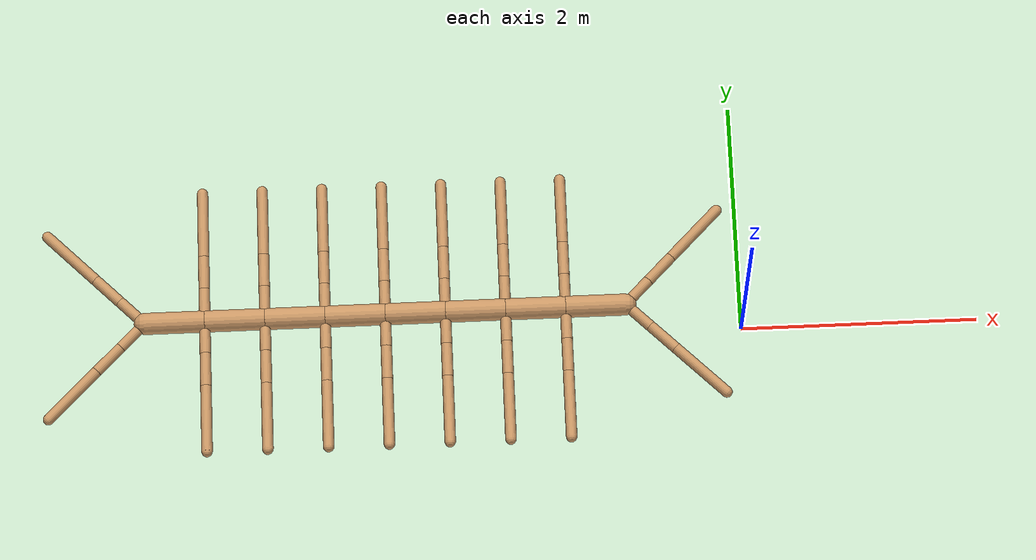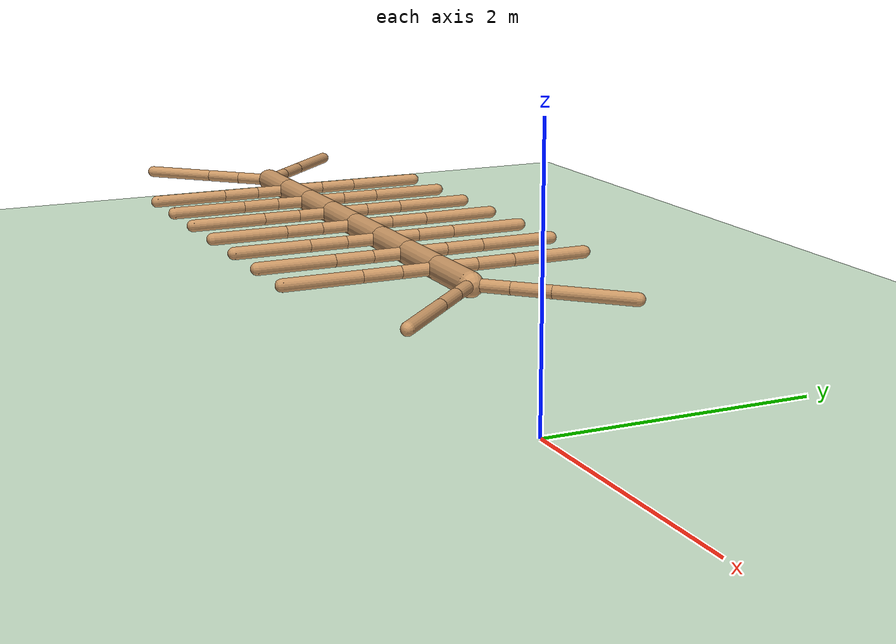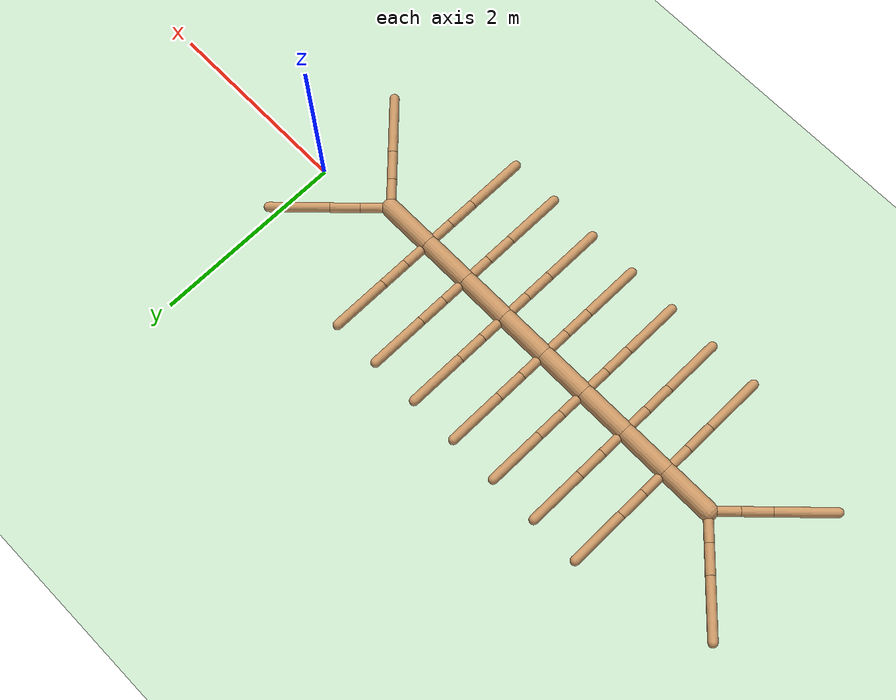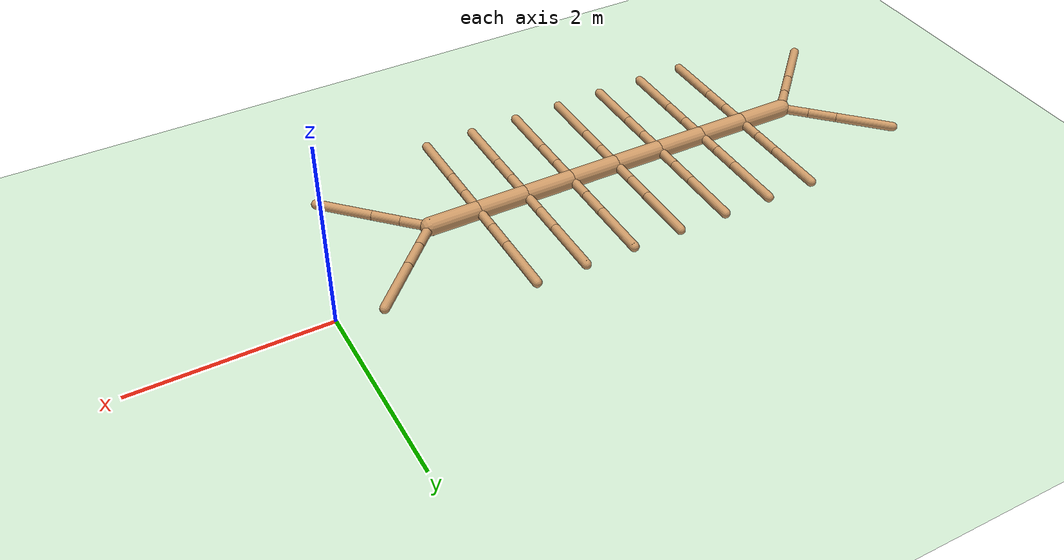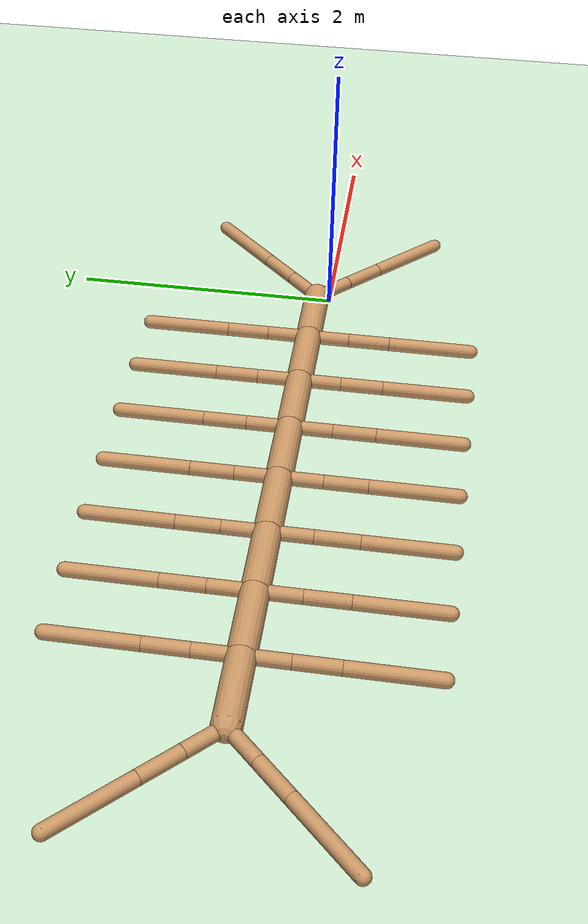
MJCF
<mujoco model="ant">
  <compiler angle="degree" coordinate="local" inertiafromgeom="true" />
  <option integrator="RK4" timestep="0.01" />
  <custom>
    <numeric data="0.0 0.0 0.55 1.0 0.0 0.0 0.0 0.0 1.0 0.0 -1.0 0.0 -1.0 0.0 1.0" name="init_qpos" />
  </custom>
  <default>
    <joint armature="1" damping="1" limited="true" />
    <geom conaffinity="0" condim="3" density="5.0" friction="1 0.5 0.5" margin="0.01"
      rgba="0.8 0.6 0.4 1" />
  </default>
  <asset>
    <texture builtin="gradient" height="100" rgb1="1 1 1" rgb2="0 0 0" type="skybox" width="100" />
    <texture builtin="flat" height="1278" mark="cross" markrgb="1 1 1" name="texgeom" random="0.01"
      rgb1="0.8 0.6 0.4" rgb2="0.8 0.6 0.4" type="cube" width="127" />
    <texture builtin="checker" height="100" name="texplane" rgb1="0 0 0" rgb2="0.8 0.8 0.8"
      type="2d" width="100" />
    <material name="MatPlane" reflectance="0.5" shininess="1" specular="1" texrepeat="60 60"
      texture="texplane" />
    <material name="geom" texture="texgeom" texuniform="true" />
  </asset>
  <worldbody>
    <light cutoff="100" diffuse="1 1 1" dir="-0 0 -1.3" directional="true" exponent="1"
      pos="0 0 1.3" specular=".1 .1 .1" />
    <geom conaffinity="1" condim="3" material="MatPlane" name="floor" pos="0 0 0"
      rgba="0.8 0.9 0.8 1" size="40 40 40" type="plane" />
    <body name="torso" pos="0 0 0.75">
      <camera name="track" mode="trackcom" pos="0 -3 0.3" xyaxes="1 0 0 0 0 1" />
      <geom fromto="-5 0 0 -4.5 0 0" name="torso_geom" size="0.09" type="capsule" />
      <joint armature="0" damping="0" limited="false" margin="0.01" name="root" pos="0 0 0"
        type="free" />
      <body name="front_left_leg" pos="-5 0 0">
        <geom fromto="0.0 0.0 0.0 -0.2 0.2 0.0" name="aux_1_geom" size="0.046" type="capsule" />
        <body name="aux_1" pos="-0.2 0.2 0">
          <joint axis="0 0 1" name="hip_1" pos="0.0 0.0 0.0" range="-30 30" type="hinge" />
          <geom fromto="0.0 0.0 0.0 -0.2 0.2 0.0" name="front_right_leg_geom" size="0.046"
            type="capsule" />
          <body pos="-0.2 0.2 0">
            <joint axis="1 1 0" name="ankle_1" pos="0.0 0.0 0.0" range="-70 -30" type="hinge" />
            <geom fromto="0.0 0.0 0.0 -0.4 0.4 0.0" name="first_right_ankle_geom" size="0.046"
              type="capsule" />
          </body>
        </body>
      </body>
      <body name="back_right_leg" pos="-5 0 0">
        <geom fromto="0.0 0.0 0.0 -0.2 -0.2 0.0" name="aux_2_geom" size="0.046" type="capsule" />
        <body name="aux_2" pos="-0.2 -0.2 0">
          <joint axis="0 0 1" name="hip_2" pos="0.0 0.0 0.0" range="-30 30" type="hinge" />
          <geom fromto="0.0 0.0 0.0 -0.2 -0.2 0.0" name="back_right_leg_geom" size="0.046"
            type="capsule" />
          <body pos="-0.2 -0.2 0">
            <joint axis="-1 1 0" name="ankle_2" pos="0.0 0.0 0.0" range="-70 -30" type="hinge" />
            <geom fromto="0.0 0.0 0.0 -0.4 -0.4 0.0" name="second_right_ankle_geom" size="0.046"
              type="capsule" />
          </body>
        </body>
      </body>
      <body name="front_1_leg" pos="-4.5 0 0">
        <geom fromto="0.0 0.0 0.0 0.0 -0.2828427 0.0" name="aux_3_geom" size="0.046" type="capsule" />
        <body name="aux_3" pos="0.0 -0.2828427 0">
          <joint axis="0 0 1" name="hip_3" pos="0.0 0.0 0.0" range="-30 30" type="hinge" />
          <geom fromto="0.0 0.0 0.0 0.0 -0.2828427 0.0" name="front_1_leg_geom" size="0.046"
            type="capsule" />
          <body pos="0.0 -0.2828427 0">
            <joint axis="1 1 0" name="ankle_3" pos="0.0 0.0 0.0" range="30 70" type="hinge" />
            <geom fromto="0.0 0.0 0.0 0.0 -0.56568542 0.0" name="front_3_ankle_geom" size="0.046"
              type="capsule" />
          </body>
        </body>
      </body>
      <body name="back_1_leg" pos="-4.5 0 0">
        <geom fromto="0.0 0.0 0.0 0.0 0.2828427 0.0" name="aux_4_geom" size="0.046" type="capsule" />
        <body name="aux_4" pos="0.0 0.2828427 0">
          <joint axis="0 0 1" name="hip_4" pos="0.0 0.0 0.0" range="-30 30" type="hinge" />
          <geom fromto="0.0 0.0 0.0 0.0 0.2828427 0.0" name="back_1_leg_geom" size="0.046"
            type="capsule" />
          <body pos="0.0 0.2828427 0">
            <joint axis="1 1 0" name="ankle_4" pos="0.0 0.0 0.0" range="-70 -30" type="hinge" />
            <geom fromto="0.0 0.0 0.0 0.0 0.56568542 0.0" name="back_3_ankle_geom" size="0.046"
              type="capsule" />
          </body>
        </body>
      </body>
      <body name="seg1" pos="-4.5 0 0">
        <joint axis="0 0 1" name="seg_1" pos="0.0 0.0 0.0" range="-30 30" type="hinge" />
        <geom fromto="0.0 0.0 0.0 0.5 0.0 0.0" name="seg_1_geom" size="0.09" type="capsule" />
        <body name="front_2_leg" pos=".5 0 0">
          <geom fromto="0.0 0.0 0.0 0.0 -0.2828427 0.0" name="aux_5_geom" size="0.046" type="capsule" />
          <body name="aux_5" pos="0.0 -0.2828427 0">
            <joint axis="0 0 1" name="hip_5" pos="0.0 0.0 0.0" range="-30 30" type="hinge" />
            <geom fromto="0.0 0.0 0.0 0.0 -0.2828427 0.0" name="front_5_leg_geom" size="0.046"
              type="capsule" />
            <body pos="0.0 -0.2828427 0">
              <joint axis="1 1 0" name="ankle_5" pos="0.0 0.0 0.0" range="30 70" type="hinge" />
              <geom fromto="0.0 0.0 0.0 0.0 -0.56568542 0.0" name="front_5_ankle_geom" size="0.046"
                type="capsule" />
            </body>
          </body>
        </body>
        <body name="back_2_leg" pos=".5 0 0">
          <geom fromto="0.0 0.0 0.0 0.0 0.2828427 0.0" name="aux_6_geom" size="0.046" type="capsule" />
          <body name="aux_6" pos="0.0 0.2828427 0">
            <joint axis="0 0 1" name="hip_6" pos="0.0 0.0 0.0" range="-30 30" type="hinge" />
            <geom fromto="0.0 0.0 0.0 0.0 0.2828427 0.0" name="back_2_leg_geom" size="0.046"
              type="capsule" />
            <body pos="0.0 0.2828427 0">
              <joint axis="1 1 0" name="ankle_6" pos="0.0 0.0 0.0" range="-70 -30" type="hinge" />
              <geom fromto="0.0 0.0 0.0 0.0 0.56568542 0.0" name="back_6_ankle_geom" size="0.046"
                type="capsule" />
            </body>
          </body>
        </body>
        <body name="seg2" pos=".5 0 0">
          <joint axis="0 0 1" name="seg_2" pos="0.0 0.0 0.0" range="-30 30" type="hinge" />
          <geom fromto="0.0 0.0 0.0 0.5 0.0 0.0" name="seg_2_geom" size="0.09" type="capsule" />
          <body name="front_3_leg" pos=".5 0 0">
            <geom fromto="0.0 0.0 0.0 0.0 -0.2828427 0.0" name="aux_7_geom" size="0.046"
              type="capsule" />
            <body name="aux_7" pos="0.0 -0.2828427 0">
              <joint axis="0 0 1" name="hip_7" pos="0.0 0.0 0.0" range="-30 30" type="hinge" />
              <geom fromto="0.0 0.0 0.0 0.0 -0.2828427 0.0" name="front_2_leg_geom" size="0.046"
                type="capsule" />
              <body pos="0.0 -0.2828427 0">
                <joint axis="1 1 0" name="ankle_7" pos="0.0 0.0 0.0" range="30 70" type="hinge" />
                <geom fromto="0.0 0.0 0.0 0.0 -0.56568542 0.0" name="front_7_ankle_geom" size="0.046"
                  type="capsule" />
              </body>
            </body>
          </body>
          <body name="back_3_leg" pos=".5 0 0">
            <geom fromto="0.0 0.0 0.0 0.0 0.2828427 0.0" name="aux_8_geom" size="0.046"
              type="capsule" />
            <body name="aux_8" pos="0.0 0.2828427 0">
              <joint axis="0 0 1" name="hip_8" pos="0.0 0.0 0.0" range="-30 30" type="hinge" />
              <geom fromto="0.0 0.0 0.0 0.0 0.2828427 0.0" name="back_3_leg_geom" size="0.046"
                type="capsule" />
              <body pos="0.0 0.2828427 0">
                <joint axis="1 1 0" name="ankle_8" pos="0.0 0.0 0.0" range="-70 -30" type="hinge" />
                <geom fromto="0.0 0.0 0.0 0.0 0.56568542 0.0" name="back_8_ankle_geom" size="0.046"
                  type="capsule" />
              </body>
            </body>
          </body>
          <body name="seg3" pos=".5 0 0">
            <joint axis="0 0 1" name="seg_3" pos="0.0 0.0 0.0" range="-30 30" type="hinge" />
            <geom fromto="0.0 0.0 0.0 0.5 0.0 0.0" name="seg_3_geom" size="0.09" type="capsule" />
            <body name="front_4_leg" pos=".5 0 0">
              <geom fromto="0.0 0.0 0.0 0.0 -0.2828427 0.0" name="aux_9_geom" size="0.046"
                type="capsule" />
              <body name="aux_9" pos="0.0 -0.2828427 0">
                <joint axis="0 0 1" name="hip_9" pos="0.0 0.0 0.0" range="-30 30" type="hinge" />
                <geom fromto="0.0 0.0 0.0 0.0 -0.2828427 0.0" name="front_3_leg_geom" size="0.046"
                  type="capsule" />
                <body pos="0.0 -0.2828427 0">
                  <joint axis="1 1 0" name="ankle_9" pos="0.0 0.0 0.0" range="30 70" type="hinge" />
                  <geom fromto="0.0 0.0 0.0 0.0 -0.56568542 0.0" name="front_9_ankle_geom"
                    size="0.046"
                    type="capsule" />
                </body>
              </body>
            </body>
            <body name="back_4_leg" pos=".5 0 0">
              <geom fromto="0.0 0.0 0.0 0.0 0.2828427 0.0" name="aux_10_geom" size="0.046"
                type="capsule" />
              <body name="aux_10" pos="0.0 0.2828427 0">
                <joint axis="0 0 1" name="hip_10" pos="0.0 0.0 0.0" range="-30 30" type="hinge" />
                <geom fromto="0.0 0.0 0.0 0.0 0.2828427 0.0" name="back_4_leg_geom" size="0.046"
                  type="capsule" />
                <body pos="0.0 0.2828427 0">
                  <joint axis="1 1 0" name="ankle_10" pos="0.0 0.0 0.0" range="-70 -30" type="hinge" />
                  <geom fromto="0.0 0.0 0.0 0.0 0.56568542 0.0" name="back_10_ankle_geom"
                    size="0.046"
                    type="capsule" />
                </body>
              </body>
            </body>
            <body name="seg4" pos=".5 0 0">
              <joint axis="0 0 1" name="seg_4" pos="0.0 0.0 0.0" range="-30 30" type="hinge" />
              <geom fromto="0.0 0.0 0.0 0.5 0.0 0.0" name="seg_4_geom" size="0.09" type="capsule" />
              <body name="front_5_leg" pos=".5 0 0">
                <geom fromto="0.0 0.0 0.0 0.0 -0.2828427 0.0" name="aux_11_geom" size="0.046"
                  type="capsule" />
                <body name="aux_11" pos="0.0 -0.2828427 0">
                  <joint axis="0 0 1" name="hip_11" pos="0.0 0.0 0.0" range="-30 30" type="hinge" />
                  <geom fromto="0.0 0.0 0.0 0.0 -0.2828427 0.0" name="front_4_leg_geom" size="0.046"
                    type="capsule" />
                  <body pos="0.0 -0.2828427 0">
                    <joint axis="1 1 0" name="ankle_11" pos="0.0 0.0 0.0" range="30 70" type="hinge" />
                    <geom fromto="0.0 0.0 0.0 0.0 -0.56568542 0.0" name="front_11_ankle_geom"
                      size="0.046"
                      type="capsule" />
                  </body>
                </body>
              </body>
              <body name="back_5_leg" pos=".5 0 0">
                <geom fromto="0.0 0.0 0.0 0.0 0.2828427 0.0" name="aux_12_geom" size="0.046"
                  type="capsule" />
                <body name="aux_12" pos="0.0 0.2828427 0">
                  <joint axis="0 0 1" name="hip_12" pos="0.0 0.0 0.0" range="-30 30" type="hinge" />
                  <geom fromto="0.0 0.0 0.0 0.0 0.2828427 0.0" name="back_5_leg_geom" size="0.046"
                    type="capsule" />
                  <body pos="0.0 0.2828427 0">
                    <joint axis="1 1 0" name="ankle_12" pos="0.0 0.0 0.0" range="-70 -30"
                      type="hinge" />
                    <geom fromto="0.0 0.0 0.0 0.0 0.56568542 0.0" name="back_12_ankle_geom"
                      size="0.046"
                      type="capsule" />
                  </body>
                </body>
              </body>
              <body name="seg5" pos=".5 0 0">
                <joint axis="0 0 1" name="seg_5" pos="0.0 0.0 0.0" range="-30 30" type="hinge" />
                <geom fromto="0.0 0.0 0.0 0.5 0.0 0.0" name="seg_5_geom" size="0.09" type="capsule" />
                <body name="front_6_leg" pos=".5 0 0">
                  <geom fromto="0.0 0.0 0.0 0.0 -0.2828427 0.0" name="aux_13_geom" size="0.046"
                    type="capsule" />
                  <body name="aux_13" pos="0.0 -0.2828427 0">
                    <joint axis="0 0 1" name="hip_13" pos="0.0 0.0 0.0" range="-30 30" type="hinge" />
                    <geom fromto="0.0 0.0 0.0 0.0 -0.2828427 0.0" name="front_6_leg_geom"
                      size="0.046"
                      type="capsule" />
                    <body pos="0.0 -0.2828427 0">
                      <joint axis="1 1 0" name="ankle_13" pos="0.0 0.0 0.0" range="30 70"
                        type="hinge" />
                      <geom fromto="0.0 0.0 0.0 0.0 -0.56568542 0.0" name="front_13_ankle_geom"
                        size="0.046"
                        type="capsule" />
                    </body>
                  </body>
                </body>
                <body name="back_6_leg" pos=".5 0 0">
                  <geom fromto="0.0 0.0 0.0 0.0 0.2828427 0.0" name="aux_14_geom" size="0.046"
                    type="capsule" />
                  <body name="aux_14" pos="0.0 0.2828427 0">
                    <joint axis="0 0 1" name="hip_14" pos="0.0 0.0 0.0" range="-30 30" type="hinge" />
                    <geom fromto="0.0 0.0 0.0 0.0 0.2828427 0.0" name="back_6_leg_geom" size="0.046"
                      type="capsule" />
                    <body pos="0.0 0.2828427 0">
                      <joint axis="1 1 0" name="ankle_14" pos="0.0 0.0 0.0" range="-70 -30"
                        type="hinge" />
                      <geom fromto="0.0 0.0 0.0 0.0 0.56568542 0.0" name="back_14_ankle_geom"
                        size="0.046"
                        type="capsule" />
                    </body>
                  </body>
                </body>
                <body name="seg6" pos=".5 0 0">
                  <joint axis="0 0 1" name="seg_6" pos="0.0 0.0 0.0" range="-30 30" type="hinge" />
                  <geom fromto="0.0 0.0 0.0 0.5 0.0 0.0" name="seg_6_geom" size="0.09"
                    type="capsule" />
                  <body name="front_7_leg" pos=".5 0 0">
                    <geom fromto="0.0 0.0 0.0 0.0 -0.2828427 0.0" name="aux_15_geom" size="0.046"
                      type="capsule" />
                    <body name="aux_15" pos="0.0 -0.2828427 0">
                      <joint axis="0 0 1" name="hip_15" pos="0.0 0.0 0.0" range="-30 30"
                        type="hinge" />
                      <geom fromto="0.0 0.0 0.0 0.0 -0.2828427 0.0" name="front_7_leg_geom"
                        size="0.046"
                        type="capsule" />
                      <body pos="0.0 -0.2828427 0">
                        <joint axis="1 1 0" name="ankle_15" pos="0.0 0.0 0.0" range="30 70"
                          type="hinge" />
                        <geom fromto="0.0 0.0 0.0 0.0 -0.56568542 0.0" name="front_15_ankle_geom"
                          size="0.046"
                          type="capsule" />
                      </body>
                    </body>
                  </body>
                  <body name="back_7_leg" pos=".5 0 0">
                    <geom fromto="0.0 0.0 0.0 0.0 0.2828427 0.0" name="aux_16_geom" size="0.046"
                      type="capsule" />
                    <body name="aux_16" pos="0.0 0.2828427 0">
                      <joint axis="0 0 1" name="hip_16" pos="0.0 0.0 0.0" range="-30 30"
                        type="hinge" />
                      <geom fromto="0.0 0.0 0.0 0.0 0.2828427 0.0" name="back_7_leg_geom"
                        size="0.046"
                        type="capsule" />
                      <body pos="0.0 0.2828427 0">
                        <joint axis="1 1 0" name="ankle_16" pos="0.0 0.0 0.0" range="-70 -30"
                          type="hinge" />
                        <geom fromto="0.0 0.0 0.0 0.0 0.56568542 0.0" name="back_16_ankle_geom"
                          size="0.046"
                          type="capsule" />
                      </body>
                    </body>
                  </body>
                  <body name="seg7" pos=".5 0 0">
                    <joint axis="0 0 1" name="seg_7" pos="0.0 0.0 0.0" range="-30 30" type="hinge" />
                    <geom fromto="0.0 0.0 0.0 0.5 0.0 0.0" name="seg_7_geom" size="0.09"
                      type="capsule" />
                    <body name="right_back_leg" pos="0.5 0 0">
                      <geom fromto="0.0 0.0 0.0 0.2 -0.2 0.0" name="aux_17_geom" size="0.046"
                        type="capsule" />
                      <body name="aux_17" pos="0.2 -0.2 0">
                        <joint axis="0 0 1" name="hip_17" pos="0.0 0.0 0.0" range="-30 30"
                          type="hinge" />
                        <geom fromto="0.0 0.0 0.0 0.2 -0.2 0.0" name="rightback_leg_geom"
                          size="0.046" type="capsule" />
                        <body pos="0.2 -0.2 0">
                          <joint axis="1 1 0" name="ankle_17" pos="0.0 0.0 0.0" range="30 70"
                            type="hinge" />
                          <geom fromto="0.0 0.0 0.0 0.4 -0.4 0.0" name="backend_ankle_geom"
                            size="0.046" type="capsule" />
                        </body>
                      </body>
                    </body>
                    <body name="front_end_leg" pos=".5 0 0">
                      <geom fromto="0.0 0.0 0.0 0.2 0.2 0.0" name="aux_18_geom" size="0.046"
                        type="capsule" />
                      <body name="aux_18" pos="0.2 0.2 0">
                        <joint axis="0 0 1" name="hip_18" pos="0.0 0.0 0.0" range="-30 30"
                          type="hinge" />
                        <geom fromto="0.0 0.0 0.0 0.2 0.2 0.0" name="front_end_leg_geom" size="0.046"
                          type="capsule" />
                        <body pos="0.2 0.2 0">
                          <joint axis="-1 1 0" name="ankle_18" pos="0.0 0.0 0.0" range="30 70"
                            type="hinge" />
                          <geom fromto="0.0 0.0 0.0 0.4 0.4 0.0" name="frontend_ankle_geom"
                            size="0.046" type="capsule" />
                        </body>
                      </body>
                    </body>

                  </body>

                </body>

              </body>

            </body>

          </body>

        </body>

      </body>

    </body>
  </worldbody>
  <actuator>
    <motor ctrllimited="true" ctrlrange="-1.0 1.0" joint="hip_1" gear="150" />
    <motor ctrllimited="true" ctrlrange="-1.0 1.0" joint="ankle_1" gear="150" />
    <motor ctrllimited="true" ctrlrange="-1.0 1.0" joint="hip_2" gear="150" />
    <motor ctrllimited="true" ctrlrange="-1.0 1.0" joint="ankle_2" gear="150" />
    <motor ctrllimited="true" ctrlrange="-1.0 1.0" joint="hip_3" gear="150" />
    <motor ctrllimited="true" ctrlrange="-1.0 1.0" joint="ankle_3" gear="150" />
    <motor ctrllimited="true" ctrlrange="-1.0 1.0" joint="hip_4" gear="150" />
    <motor ctrllimited="true" ctrlrange="-1.0 1.0" joint="ankle_4" gear="150" />
    <motor ctrllimited="true" ctrlrange="-1.0 1.0" joint="hip_5" gear="150" />
    <motor ctrllimited="true" ctrlrange="-1.0 1.0" joint="ankle_5" gear="150" />
    <motor ctrllimited="true" ctrlrange="-1.0 1.0" joint="hip_6" gear="150" />
    <motor ctrllimited="true" ctrlrange="-1.0 1.0" joint="ankle_6" gear="150" />
    <motor ctrllimited="true" ctrlrange="-1.0 1.0" joint="hip_7" gear="150" />
    <motor ctrllimited="true" ctrlrange="-1.0 1.0" joint="ankle_7" gear="150" />
    <motor ctrllimited="true" ctrlrange="-1.0 1.0" joint="hip_8" gear="150" />
    <motor ctrllimited="true" ctrlrange="-1.0 1.0" joint="ankle_8" gear="150" />
    <motor ctrllimited="true" ctrlrange="-1.0 1.0" joint="hip_9" gear="150" />
    <motor ctrllimited="true" ctrlrange="-1.0 1.0" joint="ankle_9" gear="150" />
    <motor ctrllimited="true" ctrlrange="-1.0 1.0" joint="hip_10" gear="150" />
    <motor ctrllimited="true" ctrlrange="-1.0 1.0" joint="ankle_10" gear="150" />
    <motor ctrllimited="true" ctrlrange="-1.0 1.0" joint="hip_11" gear="150" />
    <motor ctrllimited="true" ctrlrange="-1.0 1.0" joint="ankle_11" gear="150" />
    <motor ctrllimited="true" ctrlrange="-1.0 1.0" joint="hip_12" gear="150" />
    <motor ctrllimited="true" ctrlrange="-1.0 1.0" joint="ankle_12" gear="150" />
    <motor ctrllimited="true" ctrlrange="-1.0 1.0" joint="hip_13" gear="150" />
    <motor ctrllimited="true" ctrlrange="-1.0 1.0" joint="ankle_13" gear="150" />
    <motor ctrllimited="true" ctrlrange="-1.0 1.0" joint="hip_14" gear="150" />
    <motor ctrllimited="true" ctrlrange="-1.0 1.0" joint="ankle_14" gear="150" />
    <motor ctrllimited="true" ctrlrange="-1.0 1.0" joint="hip_15" gear="150" />
    <motor ctrllimited="true" ctrlrange="-1.0 1.0" joint="ankle_15" gear="150" />
    <motor ctrllimited="true" ctrlrange="-1.0 1.0" joint="hip_16" gear="150" />
    <motor ctrllimited="true" ctrlrange="-1.0 1.0" joint="ankle_16" gear="150" />
    <motor ctrllimited="true" ctrlrange="-1.0 1.0" joint="hip_17" gear="150" />
    <motor ctrllimited="true" ctrlrange="-1.0 1.0" joint="ankle_17" gear="150" />
    <motor ctrllimited="true" ctrlrange="-1.0 1.0" joint="hip_18" gear="150" />
    <motor ctrllimited="true" ctrlrange="-1.0 1.0" joint="ankle_18" gear="150" />
  </actuator>
</mujoco>
